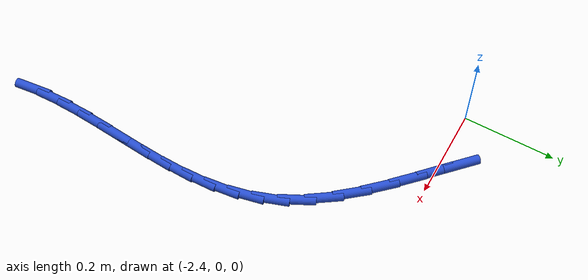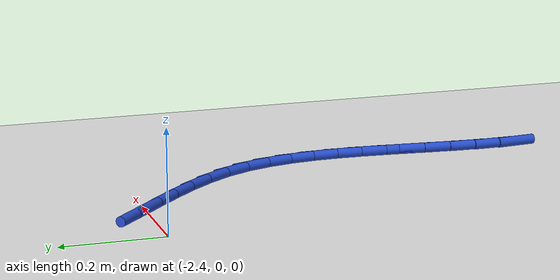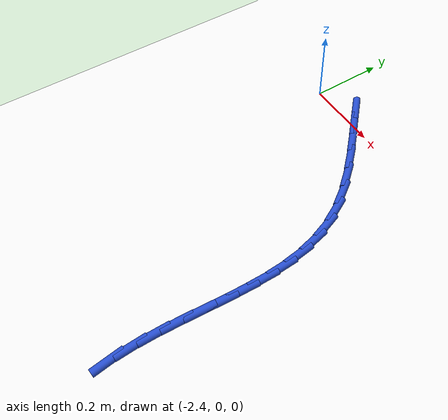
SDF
<sdf version="1.6">
 <world name="default">
  <model name="ground_plane">
   <static>1</static>
   <link name="link">
    <collision name="collision">
     <geometry><plane><normal>0 0 1</normal><size>100 100</size></plane></geometry>
     <surface><friction><ode><mu>100</mu><mu2>50</mu2></ode></friction></surface>
    </collision>
    <visual name="visual">
     <cast_shadows>0</cast_shadows>
     <geometry><plane><normal>0 0 1</normal><size>100 100</size></plane></geometry>
     <material>
      <script><uri>file://media/materials/scripts/gazebo.material</uri><name>Gazebo/WhiteGlow</name></script>
     </material>
    </visual>
   </link>
  </model>
  <model name="line">
   <link name="link_76">
    <pose>-2.2883964367862513 0.03991534599234652 0.01 0 1.57 -0.7595881403811231</pose>
    <collision name="collision">
     <geometry><cylinder><radius>0.01</radius><length>0.08</length></cylinder></geometry>
    </collision>
    <visual name="visual">
     <material>
      <script><name>Gazebo/Blue</name><uri>file://media/materials/scripts/gazebo.material</uri></script>
     </material>
     <geometry><cylinder><radius>0.01</radius><length>0.08</length></cylinder></geometry>
    </visual>
   </link>
   <link name="link_77">
    <pose>-2.246622565587458 0.0002440435022573982 0.01 0 1.57 -0.7548518289816915</pose>
    <collision name="collision">
     <geometry><cylinder><radius>0.01</radius><length>0.08</length></cylinder></geometry>
    </collision>
    <visual name="visual">
     <material>
      <script><name>Gazebo/Blue</name><uri>file://media/materials/scripts/gazebo.material</uri></script>
     </material>
     <geometry><cylinder><radius>0.01</radius><length>0.08</length></cylinder></geometry>
    </visual>
   </link>
   <link name="link_78">
    <pose>-2.203227612149994 -0.040577601150390816 0.01 0 1.57 -0.7723260092343607</pose>
    <collision name="collision">
     <geometry><cylinder><radius>0.01</radius><length>0.08</length></cylinder></geometry>
    </collision>
    <visual name="visual">
     <material>
      <script><name>Gazebo/Blue</name><uri>file://media/materials/scripts/gazebo.material</uri></script>
     </material>
     <geometry><cylinder><radius>0.01</radius><length>0.08</length></cylinder></geometry>
    </visual>
   </link>
   <link name="link_79">
    <pose>-2.160074849464473 -0.08261665977653479 0.01 0 1.57 -0.8123706736685655</pose>
    <collision name="collision">
     <geometry><cylinder><radius>0.01</radius><length>0.08</length></cylinder></geometry>
    </collision>
    <visual name="visual">
     <material>
      <script><name>Gazebo/Blue</name><uri>file://media/materials/scripts/gazebo.material</uri></script>
     </material>
     <geometry><cylinder><radius>0.01</radius><length>0.08</length></cylinder></geometry>
    </visual>
   </link>
   <link name="link_80">
    <pose>-2.119027550521511 -0.1259402041871085 0.01 0 1.57 -0.8780519830862138</pose>
    <collision name="collision">
     <geometry><cylinder><radius>0.01</radius><length>0.08</length></cylinder></geometry>
    </collision>
    <visual name="visual">
     <material>
      <script><name>Gazebo/Blue</name><uri>file://media/materials/scripts/gazebo.material</uri></script>
     </material>
     <geometry><cylinder><radius>0.01</radius><length>0.08</length></cylinder></geometry>
    </visual>
   </link>
   <link name="link_81">
    <pose>-2.081948988311724 -0.1706153061930488 0.01 0 1.57 -0.9750628348001981</pose>
    <collision name="collision">
     <geometry><cylinder><radius>0.01</radius><length>0.08</length></cylinder></geometry>
    </collision>
    <visual name="visual">
     <material>
      <script><name>Gazebo/Blue</name><uri>file://media/materials/scripts/gazebo.material</uri></script>
     </material>
     <geometry><cylinder><radius>0.01</radius><length>0.08</length></cylinder></geometry>
    </visual>
   </link>
   <link name="link_82">
    <pose>-2.0507024358257273 -0.21670903760529037 0.01 0 1.57 -1.1063157815308573</pose>
    <collision name="collision">
     <geometry><cylinder><radius>0.01</radius><length>0.08</length></cylinder></geometry>
    </collision>
    <visual name="visual">
     <material>
      <script><name>Gazebo/Blue</name><uri>file://media/materials/scripts/gazebo.material</uri></script>
     </material>
     <geometry><cylinder><radius>0.01</radius><length>0.08</length></cylinder></geometry>
    </visual>
   </link>
   <link name="link_83">
    <pose>-2.0268745235784493 -0.264265791455061 0.01 0 1.57 -1.2422747602545667</pose>
    <collision name="collision">
     <geometry><cylinder><radius>0.01</radius><length>0.08</length></cylinder></geometry>
    </collision>
    <visual name="visual">
     <material>
      <script><name>Gazebo/Blue</name><uri>file://media/materials/scripts/gazebo.material</uri></script>
     </material>
     <geometry><cylinder><radius>0.01</radius><length>0.08</length></cylinder></geometry>
    </visual>
   </link>
   <link name="link_84">
    <pose>-2.010201539706212 -0.3131782721831754 0.01 0 1.57 -1.363421133748681</pose>
    <collision name="collision">
     <geometry><cylinder><radius>0.01</radius><length>0.08</length></cylinder></geometry>
    </collision>
    <visual name="visual">
     <material>
      <script><name>Gazebo/Blue</name><uri>file://media/materials/scripts/gazebo.material</uri></script>
     </material>
     <geometry><cylinder><radius>0.01</radius><length>0.08</length></cylinder></geometry>
    </visual>
   </link>
   <link name="link_85">
    <pose>-1.9996607791071037 -0.3632769629811375 0.01 0 1.57 -1.4648939368300327</pose>
    <collision name="collision">
     <geometry><cylinder><radius>0.01</radius><length>0.08</length></cylinder></geometry>
    </collision>
    <visual name="visual">
     <material>
      <script><name>Gazebo/Blue</name><uri>file://media/materials/scripts/gazebo.material</uri></script>
     </material>
     <geometry><cylinder><radius>0.01</radius><length>0.08</length></cylinder></geometry>
    </visual>
   </link>
   <link name="link_86">
    <pose>-1.9942272296047265 -0.41439215790957756 0.01 0 1.57 -1.5447956680932138</pose>
    <collision name="collision">
     <geometry><cylinder><radius>0.01</radius><length>0.08</length></cylinder></geometry>
    </collision>
    <visual name="visual">
     <material>
      <script><name>Gazebo/Blue</name><uri>file://media/materials/scripts/gazebo.material</uri></script>
     </material>
     <geometry><cylinder><radius>0.01</radius><length>0.08</length></cylinder></geometry>
    </visual>
   </link>
   <link name="link_87">
    <pose>-1.9928758790226804 -0.46635415102912336 0.01 0 1.57 1.538401398410963</pose>
    <collision name="collision">
     <geometry><cylinder><radius>0.01</radius><length>0.08</length></cylinder></geometry>
    </collision>
    <visual name="visual">
     <material>
      <script><name>Gazebo/Blue</name><uri>file://media/materials/scripts/gazebo.material</uri></script>
     </material>
     <geometry><cylinder><radius>0.01</radius><length>0.08</length></cylinder></geometry>
    </visual>
   </link>
   <link name="link_88">
    <pose>-1.994581715184566 -0.5189932364004026 0.01 0 1.57 1.5005778343934313</pose>
    <collision name="collision">
     <geometry><cylinder><radius>0.01</radius><length>0.08</length></cylinder></geometry>
    </collision>
    <visual name="visual">
     <material>
      <script><name>Gazebo/Blue</name><uri>file://media/materials/scripts/gazebo.material</uri></script>
     </material>
     <geometry><cylinder><radius>0.01</radius><length>0.08</length></cylinder></geometry>
    </visual>
   </link>
   <link name="link_89">
    <pose>-1.998319725913983 -0.5721397080840454 0.01 0 1.57 1.4823069150414498</pose>
    <collision name="collision">
     <geometry><cylinder><radius>0.01</radius><length>0.08</length></cylinder></geometry>
    </collision>
    <visual name="visual">
     <material>
      <script><name>Gazebo/Blue</name><uri>file://media/materials/scripts/gazebo.material</uri></script>
     </material>
     <geometry><cylinder><radius>0.01</radius><length>0.08</length></cylinder></geometry>
    </visual>
   </link>
   <link name="link_90">
    <pose>-2.0030648990345328 -0.6256238601406796 0.01 0 1.57 1.482912643283614</pose>
    <collision name="collision">
     <geometry><cylinder><radius>0.01</radius><length>0.08</length></cylinder></geometry>
    </collision>
    <visual name="visual">
     <material>
      <script><name>Gazebo/Blue</name><uri>file://media/materials/scripts/gazebo.material</uri></script>
     </material>
     <geometry><cylinder><radius>0.01</radius><length>0.08</length></cylinder></geometry>
    </visual>
   </link>
   <link name="link_91">
    <pose>-2.0077922223698152 -0.6792759866309327 0.01 0 1.57 1.5022286049897857</pose>
    <collision name="collision">
     <geometry><cylinder><radius>0.01</radius><length>0.08</length></cylinder></geometry>
    </collision>
    <visual name="visual">
     <material>
      <script><name>Gazebo/Blue</name><uri>file://media/materials/scripts/gazebo.material</uri></script>
     </material>
     <geometry><cylinder><radius>0.01</radius><length>0.08</length></cylinder></geometry>
    </visual>
   </link>
   <link name="link_92">
    <pose>-2.0114766837434304 -0.7329263816154352 0.01 0 1.57 1.5405770557310856</pose>
    <collision name="collision">
     <geometry><cylinder><radius>0.01</radius><length>0.08</length></cylinder></geometry>
    </collision>
    <visual name="visual">
     <material>
      <script><name>Gazebo/Blue</name><uri>file://media/materials/scripts/gazebo.material</uri></script>
     </material>
     <geometry><cylinder><radius>0.01</radius><length>0.08</length></cylinder></geometry>
    </visual>
   </link>
   <link name="link_93">
    <pose>-2.0130932709789793 -0.7864053391548136 0.01 0 1.57 -1.5430210137961946</pose>
    <collision name="collision">
     <geometry><cylinder><radius>0.01</radius><length>0.08</length></cylinder></geometry>
    </collision>
    <visual name="visual">
     <material>
      <script><name>Gazebo/Blue</name><uri>file://media/materials/scripts/gazebo.material</uri></script>
     </material>
     <geometry><cylinder><radius>0.01</radius><length>0.08</length></cylinder></geometry>
    </visual>
   </link>
   <link name="link_94">
    <pose>-2.011616971900062 -0.8395431533096984 0.01 0 1.57 -1.4648949364211263</pose>
    <collision name="collision">
     <geometry><cylinder><radius>0.01</radius><length>0.08</length></cylinder></geometry>
    </collision>
    <visual name="visual">
     <material>
      <script><name>Gazebo/Blue</name><uri>file://media/materials/scripts/gazebo.material</uri></script>
     </material>
     <geometry><cylinder><radius>0.01</radius><length>0.08</length></cylinder></geometry>
    </visual>
   </link>
  </model>
 </world>
</sdf>
